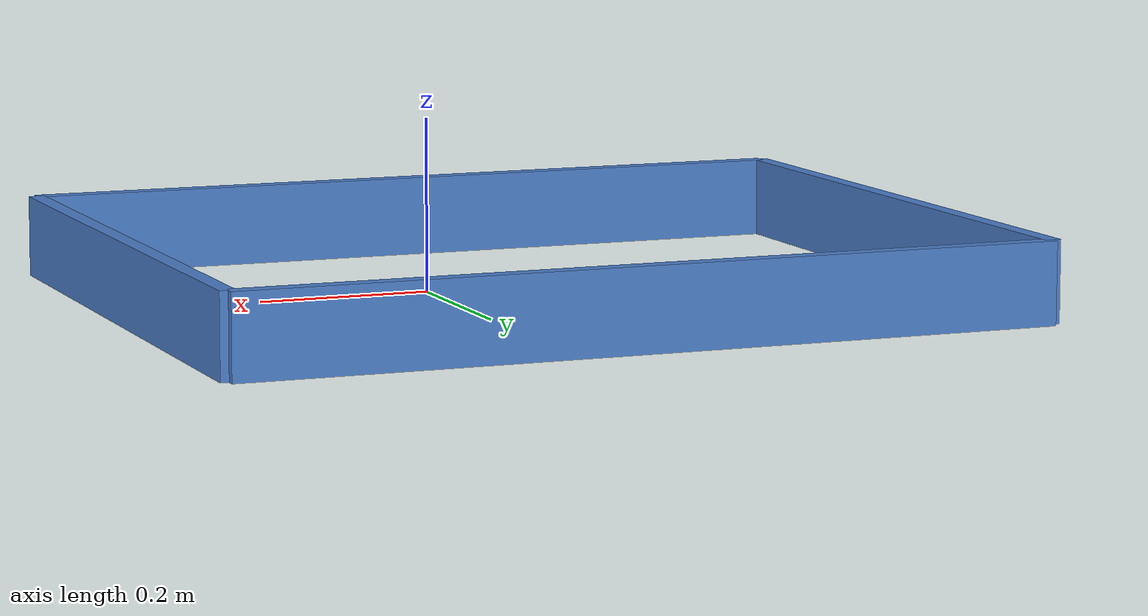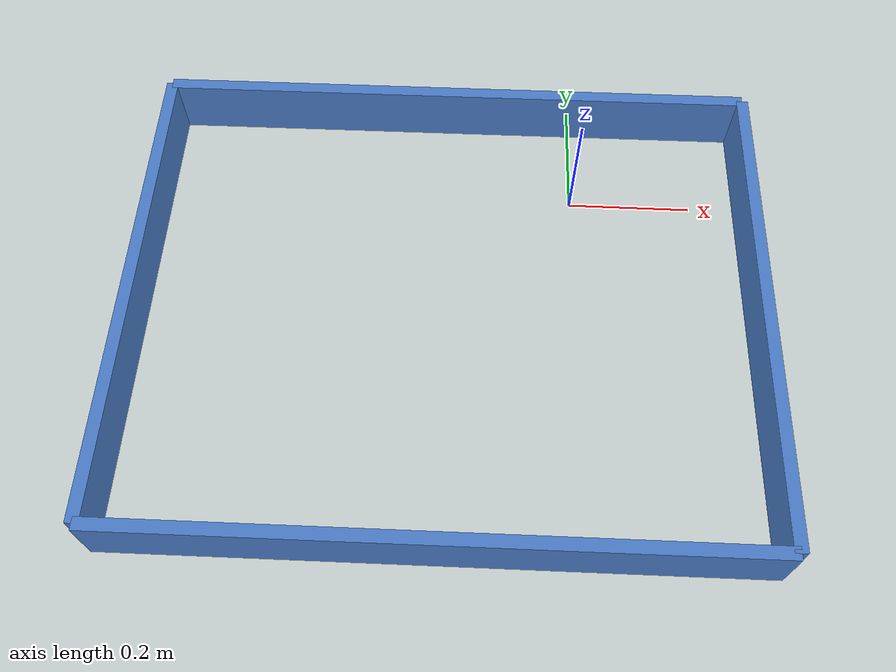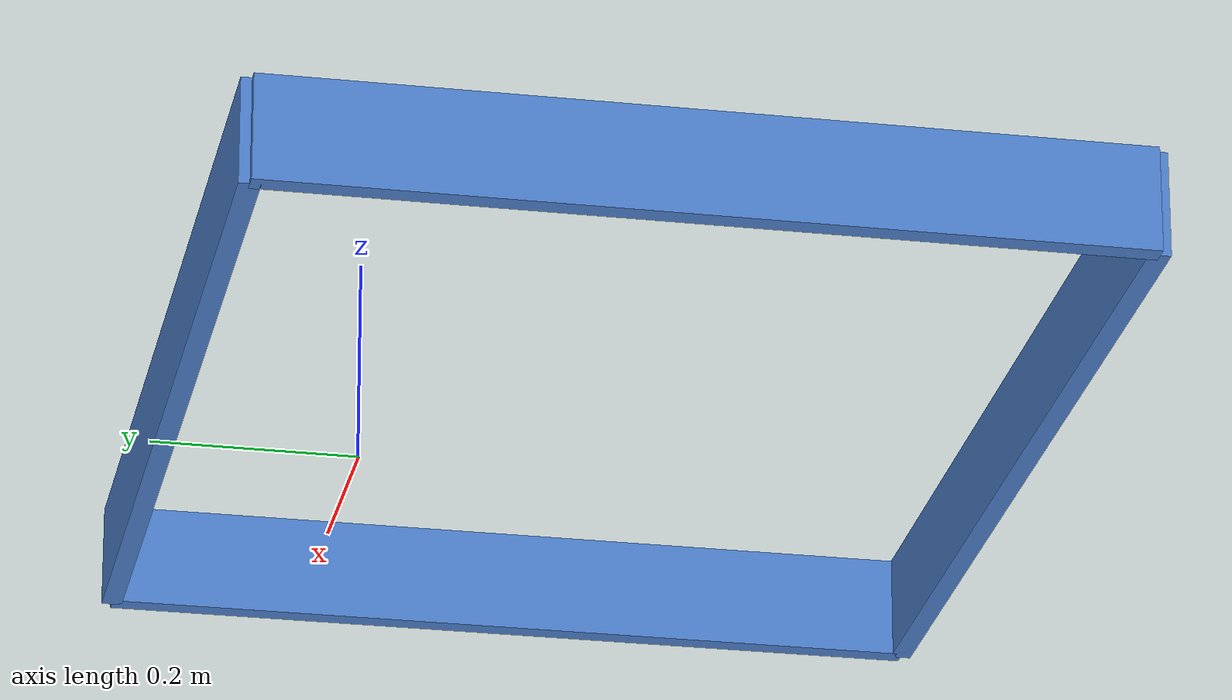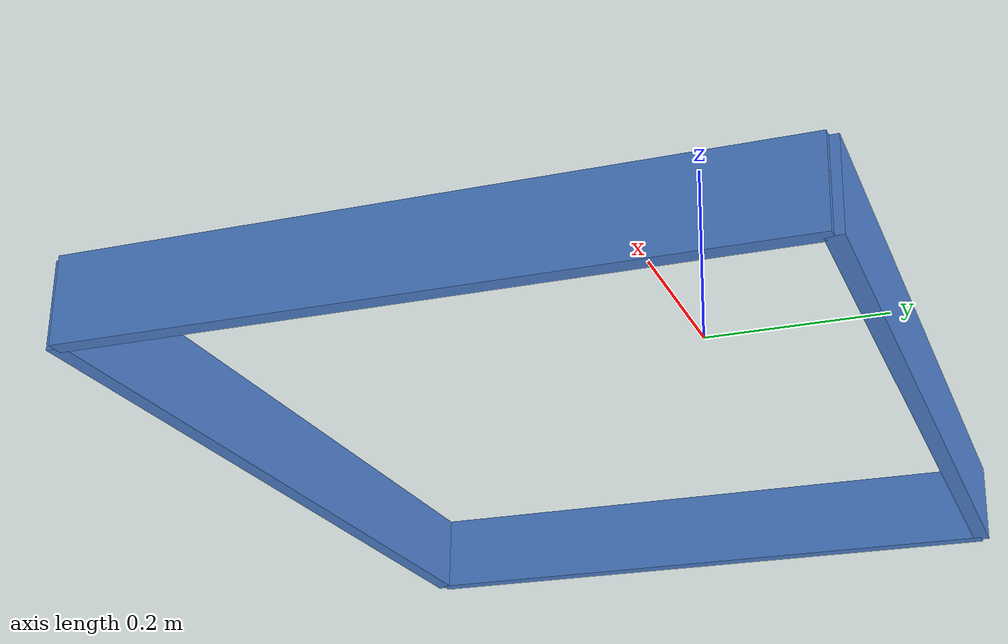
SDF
<?xml version="1.0"?>
<sdf version="1.6">
  <model name="open_box">

    <!-- 设为 true 使其成为完全静态物体：不会因碰撞而移动，也无需惯性参数 -->
    <static>true</static>

    <!-- 这里的 pose 决定初始位置；如需更改，把 x y z 调整即可 -->
    <pose>0 0 0 0 0 0</pose>

    <link name="box_body">

      <!-- ===== 四面墙，每面厚 0.02 m，高 0.1 m ===== -->

      <!-- 前墙 (Y+) -->
      <collision name="col_front">
        <pose>-0.2 0.2 0 0 0 0</pose>
        <geometry><box><size>1.0 0.02 0.1</size></box></geometry>
      </collision>
      <visual name="vis_front">
        <pose>-0.2 0.2 0 0 0 0</pose>
        <geometry><box><size>1.0 0.02 0.1</size></box></geometry>
        <material><ambient>0.3 0.5 0.8 1</ambient></material>
      </visual>

      <!-- 后墙 (Y–) -->
      <collision name="col_back">
        <pose>-0.2 -0.6 0 0 0 0</pose>
        <geometry><box><size>1.0 0.02 0.1</size></box></geometry>
      </collision>
      <visual name="vis_back">
        <pose>-0.2 -0.6 0 0 0 0</pose>
        <geometry><box><size>1.0 0.02 0.1</size></box></geometry>
        <material><ambient>0.3 0.5 0.8 1</ambient></material>
      </visual>

      <!-- 左墙 (X–) -->
      <collision name="col_left">
        <pose>-0.7 -0.2 0 0 0 0</pose>
        <geometry><box><size>0.02 0.8 0.1</size></box></geometry>
      </collision>
      <visual name="vis_left">
        <pose>-0.7 -0.2 0 0 0 0</pose>
        <geometry><box><size>0.02 0.8 0.1</size></box></geometry>
        <material><ambient>0.3 0.5 0.8 1</ambient></material>
      </visual>

      <!-- 右墙 (X+) -->
      <collision name="col_right">
        <pose>0.3 -0.2 0 0 0 0</pose>
        <geometry><box><size>0.02 0.8 0.1</size></box></geometry>
      </collision>
      <visual name="vis_right">
        <pose>0.3 -0.2 0 0 0 0</pose>
        <geometry><box><size>0.02 0.8 0.1</size></box></geometry>
        <material><ambient>0.3 0.5 0.8 1</ambient></material>
      </visual>

    </link>
  </model>
</sdf>
